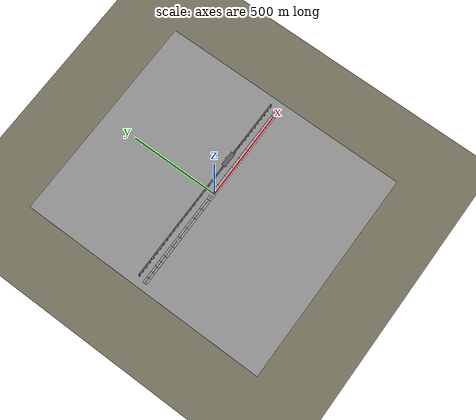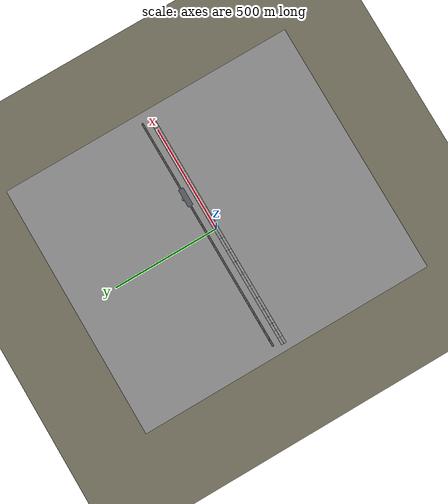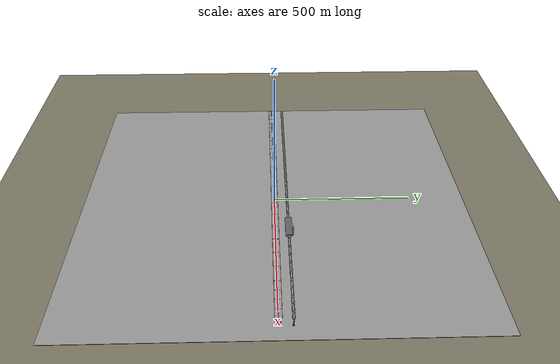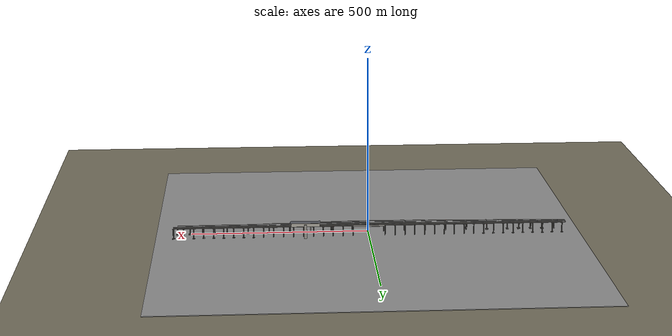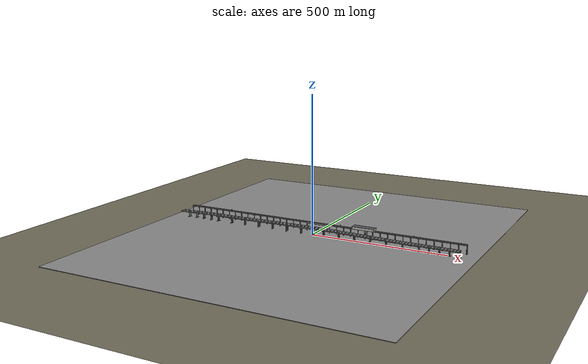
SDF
<?xml version="1.0" ?>
<sdf version="1.9">
  <world name="avian_sic">
    <physics name="default" type="dart">
      <max_step_size>0.002</max_step_size>
      <real_time_factor>1.0</real_time_factor>
    </physics>
    <plugin name="gz::sim::systems::physics" filename="gz-sim-physics-system"/>
    <plugin name="gz::sim::systems::user_commands" filename="gz-sim-user-commands-system"/>
    <plugin name="gz::sim::systems::scene_broadcaster" filename="gz-sim-scene-broadcaster-system"/>
    <plugin name="gz::sim::systems::sensors" filename="gz-sim-sensors-system">
      <render_engine>ogre2</render_engine>
    </plugin>
    <plugin name="gz::sim::systems::contact" filename="gz-sim-contact-system"/>
    <light name="sun" type="directional">
      <cast_shadows>true</cast_shadows>
      <pose>0 0 300 0 0 0</pose>
      <diffuse>0.9 0.88 0.85 1</diffuse>
      <specular>0.2 0.2 0.2 1</specular>
      <direction>-0.5 0.3 -0.8</direction>
    </light>
    <model name="ground_plane">
      <static>true</static>
      <link name="link">
        <collision name="collision">
          <geometry>
            <plane>
              <normal>0 0 1</normal>
              <size>4000 4000</size>
            </plane>
          </geometry>
        </collision>
        <visual name="visual">
          <geometry>
            <plane>
              <normal>0 0 1</normal>
              <size>4000 4000</size>
            </plane>
          </geometry>
          <material>
            <ambient>0.25 0.24 0.20 1</ambient>
            <diffuse>0.45 0.43 0.36 1</diffuse>
          </material>
        </visual>
      </link>
      <pose>0 0 0 0 0 0</pose>
    </model>
    <include>
      <uri>model://avian_bridge</uri>
      <pose>0 0 0 0 0 0</pose>
    </include>
    <include>
      <uri>model://avian_metro</uri>
      <pose>0 0 0 0 0 0</pose>
    </include>
    <include>
      <uri>model://avian_terrain</uri>
      <pose>0 0 0 0 0 0</pose>
    </include>
    <include>
      <uri>model://avian_defects</uri>
      <pose>0 0 0 0 0 0</pose>
    </include>
    <gui fullscreen="0">
      <camera name="user_camera">
        <pose>0 -420 520 0 0.95 1.5708</pose>
      </camera>
    </gui>
  </world>
</sdf>

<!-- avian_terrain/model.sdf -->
<sdf version="1.9">
  <model name="avian_terrain">
    <static>true</static>
    <pose>0 0 0 0 0 0</pose>
    <link name="link">
      <collision name="ENV_GROUND_PLANE_collision">
        <pose>0.000000 0.000000 -5.000000 0 0 0.000000</pose>
        <geometry>
          <box>
            <size>1200.000000 1400.000000 10.000000</size>
          </box>
        </geometry>
      </collision>
      <visual name="ENV_GROUND_PLANE_visual">
        <pose>0.000000 0.000000 -5.000000 0 0 0.000000</pose>
        <geometry>
          <box>
            <size>1200.000000 1400.000000 10.000000</size>
          </box>
        </geometry>
        <material>
          <ambient>0.220 0.220 0.220 1</ambient>
          <diffuse>0.550 0.550 0.550 1</diffuse>
          <specular>0.1 0.1 0.1 1</specular>
        </material>
      </visual>
      <collision name="ENV_WATER_SURFACE_collision">
        <pose>0.000000 0.000000 -7.000000 0 0 0.000000</pose>
        <geometry>
          <box>
            <size>620.000000 1400.000000 10.000000</size>
          </box>
        </geometry>
      </collision>
      <visual name="ENV_WATER_SURFACE_visual">
        <pose>0.000000 0.000000 -7.000000 0 0 0.000000</pose>
        <geometry>
          <box>
            <size>620.000000 1400.000000 10.000000</size>
          </box>
        </geometry>
        <material>
          <ambient>0.220 0.220 0.220 1</ambient>
          <diffuse>0.550 0.550 0.550 1</diffuse>
          <specular>0.1 0.1 0.1 1</specular>
        </material>
      </visual>
    </link>
  </model>
</sdf>
